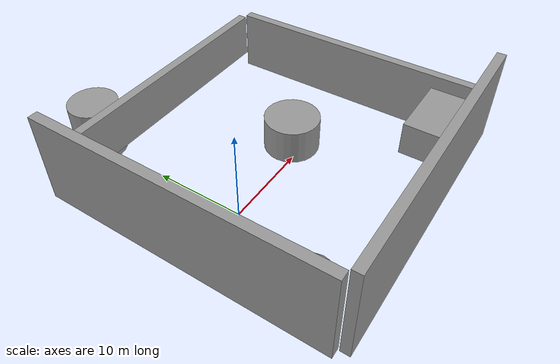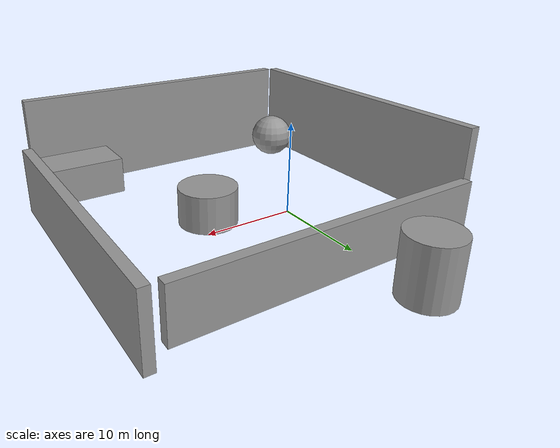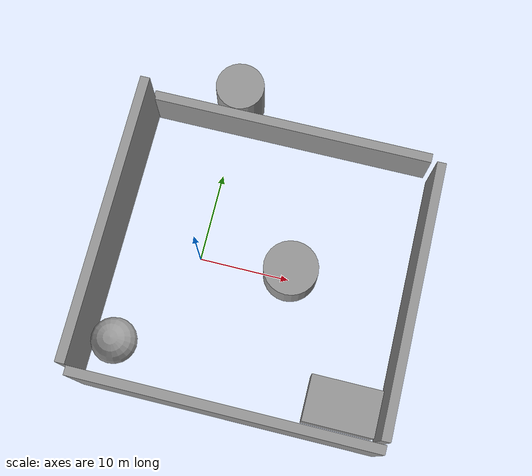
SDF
<sdf version="1.6">
 <world name="vrc_task_1">
  <scene><ambient>0.4 0.4 0.4 1</ambient><background>0.7 0.7 0.7 1</background><shadows>1</shadows></scene>
  <physics name="default_physics" default="0" type="ode">
   <ode>
    <solver>
     <type>quick</type>
     <iters>10</iters>
     <sor>1</sor>
     <use_dynamic_moi_rescaling>0</use_dynamic_moi_rescaling>
    </solver>
    <constraints>
     <cfm>0</cfm>
     <erp>0.2</erp>
     <contact_max_correcting_vel>100</contact_max_correcting_vel>
     <contact_surface_layer>0.001</contact_surface_layer>
    </constraints>
   </ode>
   <max_step_size>0.004</max_step_size>
   <real_time_factor>1</real_time_factor>
   <real_time_update_rate>250</real_time_update_rate>
  </physics>
  <light name="sun" type="directional">
   <pose>0 0 10 0 -0 0</pose>
   <diffuse>0.8 0.8 0.8 1</diffuse>
   <specular>0.2 0.2 0.2 1</specular>
   <attenuation>
    <range>1000</range>
    <constant>0.9</constant>
    <linear>0.01</linear>
    <quadratic>0.001</quadratic>
   </attenuation>
   <direction>-0.5 0.1 -0.9</direction>
  </light>
  <gravity>0 0 -9.8066</gravity>
  <magnetic_field>6e-06 2.3e-05 -4.2e-05</magnetic_field>
  <atmosphere type="adiabatic"/>
  <audio><device>default</device></audio>
  <spherical_coordinates>
   <surface_model>EARTH_WGS84</surface_model>
   <latitude_deg>0</latitude_deg>
   <longitude_deg>0</longitude_deg>
   <elevation>0</elevation>
   <heading_deg>0</heading_deg>
  </spherical_coordinates>
  <model name="unit_cylinder">
   <pose>-0.012946 18.6969 3.05687 4.2e-05 3.1e-05 0.052091</pose>
   <link name="link">
    <inertial>
     <mass>1</mass>
     <inertia><ixx>0.145833</ixx><ixy>0</ixy><ixz>0</ixz><iyy>0.145833</iyy><iyz>0</iyz><izz>0.125</izz></inertia>
    </inertial>
    <collision name="collision">
     <geometry><cylinder><radius>2.67999</radius><length>6.11425</length></cylinder></geometry>
    </collision>
    <visual name="visual">
     <geometry><cylinder><radius>2.67999</radius><length>6.11425</length></cylinder></geometry>
     <material>
      <script><name>Gazebo/Grey</name><uri>file://media/materials/scripts/gazebo.material</uri></script>
     </material>
    </visual>
   </link>
  </model>
  <model name="unit_box">
   <link name="link">
    <inertial>
     <mass>10.2507</mass>
     <inertia><ixx>804.561</ixx><ixy>0</ixy><ixz>0</ixz><iyy>44.284</iyy><iyz>0</iyz><izz>761.986</izz></inertia>
    </inertial>
    <pose>13.316 0.223097 -8.7e-05 0 -0 0</pose>
    <visual name="visual">
     <geometry><box><size>1 29.8499 7.1303</size></box></geometry>
     <material>
      <script><name>Gazebo/Grey</name><uri>file://media/materials/scripts/gazebo.material</uri></script>
      <shader type="vertex"><normal_map>__default__</normal_map></shader>
     </material>
    </visual>
    <collision name="collision">
     <geometry><box><size>1 29.8499 7.1303</size></box></geometry>
     <surface>
      <friction>
       <ode><mu>1</mu><mu2>1</mu2><fdir1>0 0 0</fdir1><slip1>0</slip1><slip2>0</slip2></ode>
       <torsional>
        <coefficient>1</coefficient>
        <patch_radius>0</patch_radius>
        <surface_radius>0</surface_radius>
        <use_patch_radius>1</use_patch_radius>
        <ode><slip>0</slip></ode>
       </torsional>
      </friction>
      <bounce><restitution_coefficient>0</restitution_coefficient><threshold>1e+06</threshold></bounce>
      <contact>
       <collide_without_contact>0</collide_without_contact>
       <collide_without_contact_bitmask>1</collide_without_contact_bitmask>
       <collide_bitmask>1</collide_bitmask>
       <ode>
        <soft_cfm>0</soft_cfm>
        <soft_erp>0.2</soft_erp>
        <kp>1e+13</kp>
        <kd>1</kd>
        <max_vel>0.01</max_vel>
        <min_depth>0</min_depth>
       </ode>
       <bullet>
        <split_impulse>1</split_impulse>
        <split_impulse_penetration_threshold>-0.01</split_impulse_penetration_threshold>
        <soft_cfm>0</soft_cfm>
        <soft_erp>0.2</soft_erp>
        <kp>1e+13</kp>
        <kd>1</kd>
       </bullet>
      </contact>
     </surface>
    </collision>
   </link>
   <link name="link_0">
    <inertial>
     <mass>116.817</mass>
     <inertia><ixx>279.153</ixx><ixy>0</ixy><ixz>0</ixz><iyy>279.153</iyy><iyz>0</iyz><izz>279.153</izz></inertia>
    </inertial>
    <pose>-15.9745 -11.0058 0.977428 0.000338 1.6e-05 -0.006586</pose>
    <visual name="visual">
     <geometry><sphere><radius>2.44421</radius></sphere></geometry>
     <material>
      <lighting>1</lighting>
      <script><uri>file://media/materials/scripts/gazebo.material</uri><name>Gazebo/Grey</name></script>
     </material>
    </visual>
    <collision name="collision">
     <geometry><sphere><radius>2.44421</radius></sphere></geometry>
     <surface>
      <friction>
       <ode><mu>1</mu><mu2>1</mu2><fdir1>0 0 0</fdir1><slip1>0</slip1><slip2>0</slip2></ode>
       <torsional>
        <coefficient>1</coefficient>
        <patch_radius>0</patch_radius>
        <surface_radius>0</surface_radius>
        <use_patch_radius>1</use_patch_radius>
        <ode><slip>0</slip></ode>
       </torsional>
      </friction>
      <bounce><restitution_coefficient>0</restitution_coefficient><threshold>1e+06</threshold></bounce>
      <contact>
       <collide_without_contact>0</collide_without_contact>
       <collide_without_contact_bitmask>1</collide_without_contact_bitmask>
       <collide_bitmask>1</collide_bitmask>
       <ode>
        <soft_cfm>0</soft_cfm>
        <soft_erp>0.2</soft_erp>
        <kp>1e+13</kp>
        <kd>1</kd>
        <max_vel>0.01</max_vel>
        <min_depth>0</min_depth>
       </ode>
       <bullet>
        <split_impulse>1</split_impulse>
        <split_impulse_penetration_threshold>-0.01</split_impulse_penetration_threshold>
        <soft_cfm>0</soft_cfm>
        <soft_erp>0.2</soft_erp>
        <kp>1e+13</kp>
        <kd>1</kd>
       </bullet>
      </contact>
     </surface>
    </collision>
   </link>
   <link name="link_0_0">
    <inertial>
     <mass>156.185</mass>
     <inertia><ixx>351.55</ixx><ixy>0</ixy><ixz>0</ixz><iyy>12545.1</iyy><iyz>0</iyz><izz>12219.6</izz></inertia>
    </inertial>
    <pose>-3.12376 15.4175 1.14583 -0 8e-06 -0.006571</pose>
    <visual name="visual">
     <geometry><box><size>30.6244 1 5.10003</size></box></geometry>
     <material>
      <lighting>1</lighting>
      <script><uri>file://media/materials/scripts/gazebo.material</uri><name>Gazebo/Grey</name></script>
     </material>
    </visual>
    <collision name="collision">
     <geometry><box><size>30.6244 1 5.10003</size></box></geometry>
     <surface>
      <friction>
       <ode><mu>1</mu><mu2>1</mu2><fdir1>0 0 0</fdir1><slip1>0</slip1><slip2>0</slip2></ode>
       <torsional>
        <coefficient>1</coefficient>
        <patch_radius>0</patch_radius>
        <surface_radius>0</surface_radius>
        <use_patch_radius>1</use_patch_radius>
        <ode><slip>0</slip></ode>
       </torsional>
      </friction>
      <bounce><restitution_coefficient>0</restitution_coefficient><threshold>1e+06</threshold></bounce>
      <contact>
       <collide_without_contact>0</collide_without_contact>
       <collide_without_contact_bitmask>1</collide_without_contact_bitmask>
       <collide_bitmask>1</collide_bitmask>
       <ode>
        <soft_cfm>0</soft_cfm>
        <soft_erp>0.2</soft_erp>
        <kp>1e+13</kp>
        <kd>1</kd>
        <max_vel>0.01</max_vel>
        <min_depth>0</min_depth>
       </ode>
       <bullet>
        <split_impulse>1</split_impulse>
        <split_impulse_penetration_threshold>-0.01</split_impulse_penetration_threshold>
        <soft_cfm>0</soft_cfm>
        <soft_erp>0.2</soft_erp>
        <kp>1e+13</kp>
        <kd>1</kd>
       </bullet>
      </contact>
     </surface>
    </collision>
   </link>
   <link name="link_1">
    <inertial>
     <mass>305.36</mass>
     <inertia><ixx>25674.2</ixx><ixy>0</ixy><ixz>0</ixz><iyy>2406.33</iyy><iyz>0</iyz><izz>23318.8</izz></inertia>
    </inertial>
    <pose>-18.8618 0.121159 3.70092 0.000338 1.6e-05 -0.006586</pose>
    <visual name="visual">
     <geometry><box><size>1 30.2552 9.6228</size></box></geometry>
     <material>
      <lighting>1</lighting>
      <script><uri>file://media/materials/scripts/gazebo.material</uri><name>Gazebo/Grey</name></script>
      <shader type="vertex"><normal_map>__default__</normal_map></shader>
      <ambient>0.3 0.3 0.3 1</ambient>
      <diffuse>0.7 0.7 0.7 1</diffuse>
      <specular>0.01 0.01 0.01 1</specular>
      <emissive>0 0 0 1</emissive>
     </material>
    </visual>
    <collision name="collision">
     <geometry><box><size>1 30.2552 9.67282</size></box></geometry>
     <surface>
      <friction>
       <ode><mu>1</mu><mu2>1</mu2><fdir1>0 0 0</fdir1><slip1>0</slip1><slip2>0</slip2></ode>
       <torsional>
        <coefficient>1</coefficient>
        <patch_radius>0</patch_radius>
        <surface_radius>0</surface_radius>
        <use_patch_radius>1</use_patch_radius>
        <ode><slip>0</slip></ode>
       </torsional>
      </friction>
      <bounce><restitution_coefficient>0</restitution_coefficient><threshold>1e+06</threshold></bounce>
      <contact>
       <collide_without_contact>0</collide_without_contact>
       <collide_without_contact_bitmask>1</collide_without_contact_bitmask>
       <collide_bitmask>1</collide_bitmask>
       <ode>
        <soft_cfm>0</soft_cfm>
        <soft_erp>0.2</soft_erp>
        <kp>1e+13</kp>
        <kd>1</kd>
        <max_vel>0.01</max_vel>
        <min_depth>0</min_depth>
       </ode>
       <bullet>
        <split_impulse>1</split_impulse>
        <split_impulse_penetration_threshold>-0.01</split_impulse_penetration_threshold>
        <soft_cfm>0</soft_cfm>
        <soft_erp>0.2</soft_erp>
        <kp>1e+13</kp>
        <kd>1</kd>
       </bullet>
      </contact>
     </surface>
    </collision>
   </link>
   <link name="link_2">
    <inertial>
     <mass>303.163</mass>
     <inertia><ixx>2628.7</ixx><ixy>0</ixy><ixz>0</ixz><iyy>27114.3</iyy><iyz>0</iyz><izz>24532</izz></inertia>
    </inertial>
    <pose>-2.72758 -15.6366 3.39664 -0 8e-06 -0.006571</pose>
    <visual name="visual">
     <geometry><box><size>31.1468 0.958476 10.1554</size></box></geometry>
     <material>
      <lighting>1</lighting>
      <script><uri>file://media/materials/scripts/gazebo.material</uri><name>Gazebo/Grey</name></script>
      <shader type="vertex"><normal_map>__default__</normal_map></shader>
     </material>
    </visual>
    <collision name="collision">
     <geometry><box><size>31.1468 0.958476 10.1554</size></box></geometry>
     <surface>
      <friction>
       <ode><mu>1</mu><mu2>1</mu2><fdir1>0 0 0</fdir1><slip1>0</slip1><slip2>0</slip2></ode>
       <torsional>
        <coefficient>1</coefficient>
        <patch_radius>0</patch_radius>
        <surface_radius>0</surface_radius>
        <use_patch_radius>1</use_patch_radius>
        <ode><slip>0</slip></ode>
       </torsional>
      </friction>
      <bounce><restitution_coefficient>0</restitution_coefficient><threshold>1e+06</threshold></bounce>
      <contact>
       <collide_without_contact>0</collide_without_contact>
       <collide_without_contact_bitmask>1</collide_without_contact_bitmask>
       <collide_bitmask>1</collide_bitmask>
       <ode>
        <soft_cfm>0</soft_cfm>
        <soft_erp>0.2</soft_erp>
        <kp>1e+13</kp>
        <kd>1</kd>
        <max_vel>0.01</max_vel>
        <min_depth>0</min_depth>
       </ode>
       <bullet>
        <split_impulse>1</split_impulse>
        <split_impulse_penetration_threshold>-0.01</split_impulse_penetration_threshold>
        <soft_cfm>0</soft_cfm>
        <soft_erp>0.2</soft_erp>
        <kp>1e+13</kp>
        <kd>1</kd>
       </bullet>
      </contact>
     </surface>
    </collision>
   </link>
   <link name="link_3">
    <inertial>
     <mass>131.484</mass>
     <inertia><ixx>442.361</ixx><ixy>0</ixy><ixz>0</ixz><iyy>442.361</iyy><iyz>0</iyz><izz>572.626</izz></inertia>
    </inertial>
    <pose>0.231313 0.607794 0.074208 -0 8e-06 -0.006571</pose>
    <visual name="visual">
     <geometry><cylinder><radius>2.9513</radius><length>3.77385</length></cylinder></geometry>
     <material>
      <lighting>1</lighting>
      <script><uri>file://media/materials/scripts/gazebo.material</uri><name>Gazebo/Grey</name></script>
     </material>
    </visual>
    <collision name="collision">
     <geometry><cylinder><radius>2.9513</radius><length>3.77385</length></cylinder></geometry>
     <surface>
      <friction>
       <ode><mu>1</mu><mu2>1</mu2><fdir1>0 0 0</fdir1><slip1>0</slip1><slip2>0</slip2></ode>
       <torsional>
        <coefficient>1</coefficient>
        <patch_radius>0</patch_radius>
        <surface_radius>0</surface_radius>
        <use_patch_radius>1</use_patch_radius>
        <ode><slip>0</slip></ode>
       </torsional>
      </friction>
      <bounce><restitution_coefficient>0</restitution_coefficient><threshold>1e+06</threshold></bounce>
      <contact>
       <collide_without_contact>0</collide_without_contact>
       <collide_without_contact_bitmask>1</collide_without_contact_bitmask>
       <collide_bitmask>1</collide_bitmask>
       <ode>
        <soft_cfm>0</soft_cfm>
        <soft_erp>0.2</soft_erp>
        <kp>1e+13</kp>
        <kd>1</kd>
        <max_vel>0.01</max_vel>
        <min_depth>0</min_depth>
       </ode>
       <bullet>
        <split_impulse>1</split_impulse>
        <split_impulse_penetration_threshold>-0.01</split_impulse_penetration_threshold>
        <soft_cfm>0</soft_cfm>
        <soft_erp>0.2</soft_erp>
        <kp>1e+13</kp>
        <kd>1</kd>
       </bullet>
      </contact>
     </surface>
    </collision>
   </link>
   <link name="link_4">
    <inertial>
     <mass>138.019</mass>
     <inertia><ixx>438.242</ixx><ixy>0</ixy><ixz>0</ixz><iyy>808.758</iyy><iyz>0</iyz><izz>920.093</izz></inertia>
    </inertial>
    <pose>8.52735 -12.1835 0.48918 -0 8e-06 -0.006571</pose>
    <visual name="visual">
     <geometry><box><size>7.49036 4.88787 3.76979</size></box></geometry>
     <material>
      <lighting>1</lighting>
      <script><uri>file://media/materials/scripts/gazebo.material</uri><name>Gazebo/Grey</name></script>
     </material>
    </visual>
    <collision name="collision">
     <geometry><box><size>7.49036 4.88787 3.76979</size></box></geometry>
     <surface>
      <friction>
       <ode><mu>1</mu><mu2>1</mu2><fdir1>0 0 0</fdir1><slip1>0</slip1><slip2>0</slip2></ode>
       <torsional>
        <coefficient>1</coefficient>
        <patch_radius>0</patch_radius>
        <surface_radius>0</surface_radius>
        <use_patch_radius>1</use_patch_radius>
        <ode><slip>0</slip></ode>
       </torsional>
      </friction>
      <bounce><restitution_coefficient>0</restitution_coefficient><threshold>1e+06</threshold></bounce>
      <contact>
       <collide_without_contact>0</collide_without_contact>
       <collide_without_contact_bitmask>1</collide_without_contact_bitmask>
       <collide_bitmask>1</collide_bitmask>
       <ode>
        <soft_cfm>0</soft_cfm>
        <soft_erp>0.2</soft_erp>
        <kp>1e+13</kp>
        <kd>1</kd>
        <max_vel>0.01</max_vel>
        <min_depth>0</min_depth>
       </ode>
       <bullet>
        <split_impulse>1</split_impulse>
        <split_impulse_penetration_threshold>-0.01</split_impulse_penetration_threshold>
        <soft_cfm>0</soft_cfm>
        <soft_erp>0.2</soft_erp>
        <kp>1e+13</kp>
        <kd>1</kd>
       </bullet>
      </contact>
     </surface>
    </collision>
   </link>
   <static>0</static>
   <pose>9.90855 -0.367593 3.55455 -0 -0.000834 0.006573</pose>
  </model>
 </world>
</sdf>
